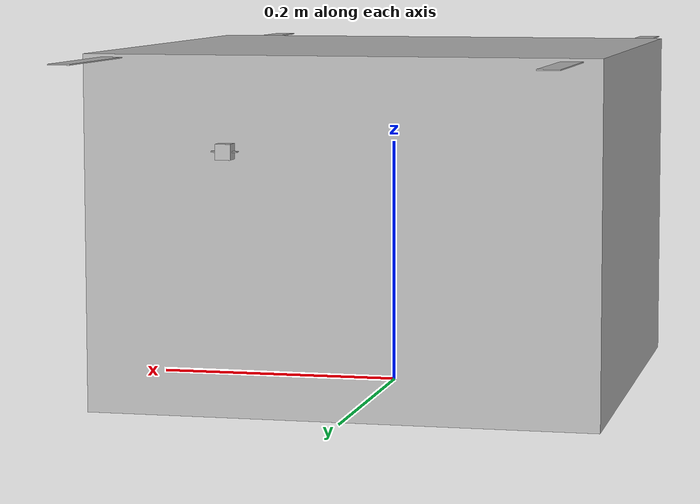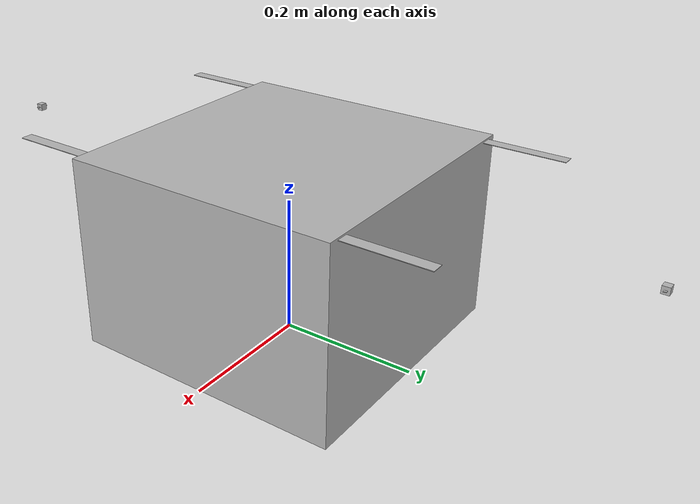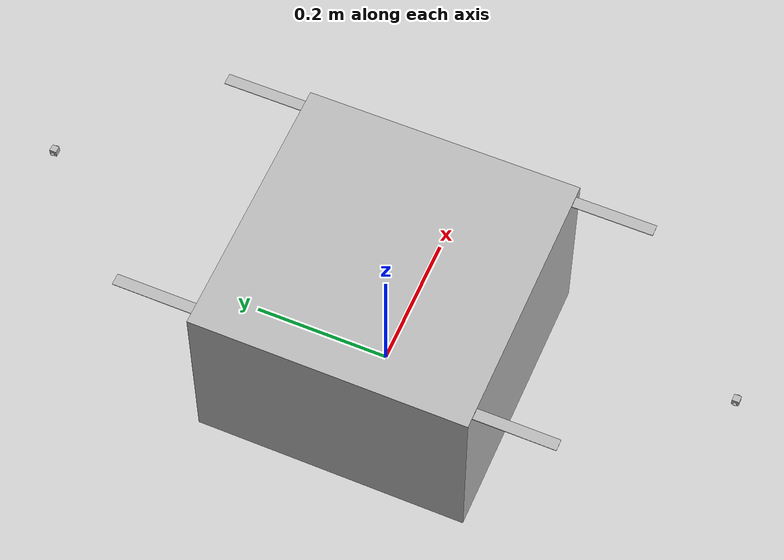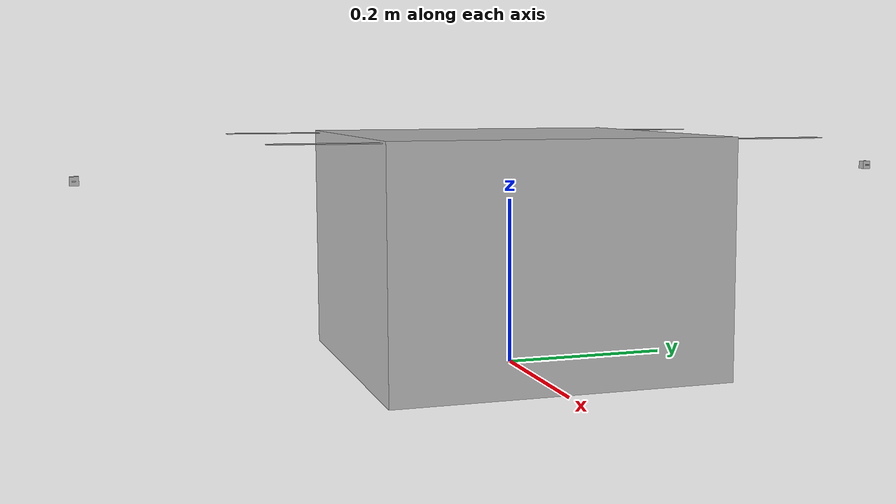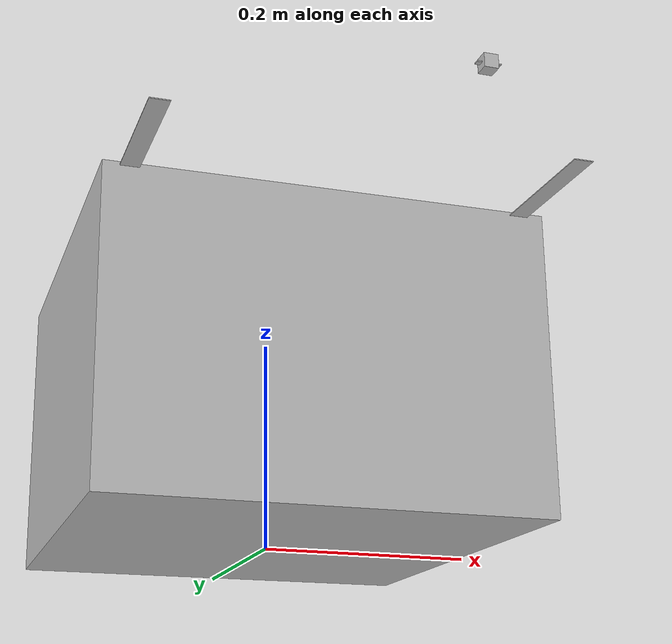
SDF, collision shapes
<?xml version="1.0" encoding="UTF-8"?>
<sdf version='1.9'>
  <model name='x500_dual_500'>
    <pose>0 0 0.217 0 0 1.57</pose>
    <self_collide>false</self_collide>
    <static>false</static>
    <link name="base_link">
    <inertial>
        <pose>0 0 0.015702 0 0 0</pose>
        <mass>2.47</mass>
        <inertia>
          <ixx>0.0133</ixx>
          <ixy>0</ixy>
          <ixz>0</ixz>
          <iyy>0.0133</iyy>
          <iyz>0</iyz>
          <izz>0.0249</izz>
        </inertia>
      </inertial>
      <gravity>true</gravity>
      <velocity_decay/>
      <visual name="base_link_visual">
        <pose>0 0 0 0 0 0</pose>
        <geometry>
          <mesh>
            <scale>1 1 1</scale>
            <uri>model://x500_dual_500/meshes/uav_frame_x500_simple.dae</uri>
          </mesh>
        </geometry>
      </visual>
      <!-- Collision definition -->
      <collision name="base_link_collision_0">
        <pose> 0 0 -0.076276 0 0 0</pose>
        <geometry>
          <box>
            <size>0.40 0.40 0.278 </size>
          </box>
        </geometry>
        <surface>
          <contact>
            <ode>
              <min_depth>0.001</min_depth>
              <max_vel>0</max_vel>
            </ode>
          </contact>
          <friction>
            <ode/>
          </friction>
        </surface>
      </collision>
<!-- Collision definition END-->
<!-- Flight Sensors  -->
      <sensor name="air_pressure_sensor" type="air_pressure">
        <always_on>1</always_on>
        <update_rate>50</update_rate>
        <air_pressure>
          <pressure>
            <noise type="gaussian">
              <mean>0</mean>
              <stddev>0.01</stddev>
            </noise>
          </pressure>
        </air_pressure>
      </sensor>
      <sensor name="imu_sensor" type="imu">
        <always_on>1</always_on>
        <update_rate>250</update_rate>
      </sensor>
    </link>

<!-- Propellers definition -->
    <link name="rotor_0">
        <gravity>true</gravity>
        <self_collide>false</self_collide>
        <velocity_decay/>
        <pose>0.176876 -0.176876 0.06 0 0 0</pose>
        <inertial>
            <pose>0 0 -0.02 0 0 0</pose>
              <mass>0.005</mass>
              <inertia>
                <ixx>9.75e-07</ixx>
                <ixy>0</ixy>
                <ixz>0</ixz>
                <iyy>0.000166704</iyy>
                <iyz>0</iyz>
                <izz>0.000167604</izz>
              </inertia>
        </inertial>
       <visual name="rotor_0_visual">
        <pose>0 0 0 0 0 0</pose>
        <geometry>
          <mesh>
            <scale>1 1 1</scale>
            <uri>model://x500_dual_200/meshes/holybro_propeller_ccw.dae</uri>
          </mesh>
        </geometry>
      </visual>
      <collision name="rotor_0_collision">
        <pose>0 0 0 0 0 0 </pose>
        <geometry>
          <box>
            <size>0.2792307692307692 0.016923076923076923 0.0008461538461538462</size>
          </box>
        </geometry>
        <surface>
          <contact>
            <ode>
              <min_depth>0.001</min_depth>
              <max_vel>0</max_vel>
            </ode>
          </contact>
          <friction>
            <ode/>
          </friction>
        </surface>
      </collision>
    </link>
    <joint name="rotor_0_joint" type="revolute">
      <parent>base_link</parent>
      <child>rotor_0</child>
      <axis>
        <xyz>0 0 1</xyz>
        <limit>
          <lower>-1e+16</lower>
          <upper>1e+16</upper>
        </limit>
        <dynamics>
          <spring_reference>0</spring_reference>
          <spring_stiffness>0</spring_stiffness>
        </dynamics>
      </axis>
    </joint>

    <link name="rotor_1">
        <gravity>true</gravity>
        <self_collide>false</self_collide>
        <velocity_decay/>
        <pose>-0.176876 0.176876 0.06 0 0 0</pose>
        <inertial>
            <pose>0 0 -0.02 0 0 0</pose>
              <mass>0.005</mass>
              <inertia>
                <ixx>9.75e-07</ixx>
                <ixy>0</ixy>
                <ixz>0</ixz>
                <iyy>0.000166704</iyy>
                <iyz>0</iyz>
                <izz>0.000167604</izz>
              </inertia>
        </inertial>
       <visual name="rotor_1_visual">
        <pose>0 0 0 0 0 0</pose>
        <geometry>
          <mesh>
            <scale>1 1 1</scale>
            <uri>model://x500_dual_200/meshes/holybro_propeller_ccw.dae</uri>
          </mesh>
        </geometry>
      </visual>
      <collision name="rotor_1_collision">
        <pose>0 0 0 0 0 0 </pose>
        <geometry>
          <box>
            <size>0.2792307692307692 0.016923076923076923 0.0008461538461538462</size>
          </box>
        </geometry>
        <surface>
          <contact>
            <ode>
              <min_depth>0.001</min_depth>
              <max_vel>0</max_vel>
            </ode>
          </contact>
          <friction>
            <ode/>
          </friction>
        </surface>
      </collision>
    </link>
    <joint name="rotor_1_joint" type="revolute">
      <parent>base_link</parent>
      <child>rotor_1</child>
      <axis>
        <xyz>0 0 1</xyz>
        <limit>
          <lower>-1e+16</lower>
          <upper>1e+16</upper>
        </limit>
        <dynamics>
          <spring_reference>0</spring_reference>
          <spring_stiffness>0</spring_stiffness>
        </dynamics>
      </axis>
    </joint>

    <link name="rotor_2">
        <gravity>true</gravity>
        <self_collide>false</self_collide>
        <velocity_decay/>
        <pose> 0.176876 0.176876 0.06 0 0 0</pose>
        <inertial>
            <pose>0 0 -0.02 0 0 0</pose>
              <mass>0.005</mass>
              <inertia>
                <ixx>9.75e-07</ixx>
                <ixy>0</ixy>
                <ixz>0</ixz>
                <iyy>0.000166704</iyy>
                <iyz>0</iyz>
                <izz>0.000167604</izz>
              </inertia>
        </inertial>
       <visual name="rotor_2_visual">
        <pose>0 0 0 0 0 0</pose>
        <geometry>
          <mesh>
            <scale>1 1 1</scale>
            <uri>model://x500_dual_200/meshes/holybro_propeller_cw.dae</uri>
          </mesh>
        </geometry>
      </visual>
      <collision name="rotor_2_collision">
        <pose>0 0 0 0 0 0 </pose>
        <geometry>
          <box>
            <size>0.2792307692307692 0.016923076923076923 0.0008461538461538462</size>
          </box>
        </geometry>
        <surface>
          <contact>
            <ode>
              <min_depth>0.001</min_depth>
              <max_vel>0</max_vel>
            </ode>
          </contact>
          <friction>
            <ode/>
          </friction>
        </surface>
      </collision>
    </link>
    <joint name="rotor_2_joint" type="revolute">
      <parent>base_link</parent>
      <child>rotor_2</child>
      <axis>
        <xyz>0 0 1</xyz>
        <limit>
          <lower>-1e+16</lower>
          <upper>1e+16</upper>
        </limit>
        <dynamics>
          <spring_reference>0</spring_reference>
          <spring_stiffness>0</spring_stiffness>
        </dynamics>
      </axis>
    </joint>

    <link name="rotor_3">
        <gravity>true</gravity>
        <self_collide>false</self_collide>
        <velocity_decay/>
        <pose> -0.176876 -0.176876 0.06 0 0 0</pose>
        <inertial>
            <pose>0 0 -0.02 0 0 0</pose>
              <mass>0.005</mass>
              <inertia>
                <ixx>9.75e-07</ixx>
                <ixy>0</ixy>
                <ixz>0</ixz>
                <iyy>0.000166704</iyy>
                <iyz>0</iyz>
                <izz>0.000167604</izz>
              </inertia>
        </inertial>
       <visual name="rotor_3_visual">
        <pose>0 0 0 0 0 0</pose>
        <geometry>
          <mesh>
            <scale>1 1 1</scale>
            <uri>model://x500_dual_200/meshes/holybro_propeller_cw.dae</uri>
          </mesh>
        </geometry>
      </visual>
      <collision name="rotor_3_collision">
        <pose>0 0 0 0 0 0 </pose>
        <geometry>
          <box>
            <size>0.2792307692307692 0.016923076923076923 0.0008461538461538462</size>
          </box>
        </geometry>
        <surface>
          <contact>
            <ode>
              <min_depth>0.001</min_depth>
              <max_vel>0</max_vel>
            </ode>
          </contact>
          <friction>
            <ode/>
          </friction>
        </surface>
      </collision>
    </link>
    <joint name="rotor_3_joint" type="revolute">
      <parent>base_link</parent>
      <child>rotor_3</child>
      <axis>
        <xyz>0 0 1</xyz>
        <limit>
          <lower>-1e+16</lower>
          <upper>1e+16</upper>
        </limit>
        <dynamics>
          <spring_reference>0</spring_reference>
          <spring_stiffness>0</spring_stiffness>
        </dynamics>
      </axis>
    </joint>
<!-- Propellers definition END-->
<!-- EDF Frame 500  -->

<!-- Manipulator arm  -->
    <link name="thrusters_frame_top">
        <gravity>true</gravity>
        <self_collide>false</self_collide>
        <velocity_decay/>
        <pose> 0.0 0 0 0 0 0 </pose>
        <inertial>
          <pose> 0 0 0.062 0 0 0</pose>
          <mass>0.105</mass>
            <inertia>
              <ixx>1.7062e-06</ixx>
              <iyy>0.0088</iyy>
              <izz>0.0088</izz>
          </inertia>
        </inertial>
       <visual name="thrusters_frame_top_visual">
        <pose>0 0 0 0 0 0</pose>
        <geometry>
          <mesh>
            <scale>1 1 1</scale>
            <uri>model://x500_dual_500/meshes/thrusters_frame_500_top.dae</uri>
          </mesh>
        </geometry>
      </visual>
      <!-- Correct the collision to be simple box -->
      <collision name="thrusters_frame_top_collision">
        <pose> 0 0 0 0 0 0 </pose>
        <geometry>
          <box>
            <size>0.250 0.009 0.009 </size>
          </box>
        </geometry>
        <surface>
          <contact>
            <ode>
              <min_depth>0.001</min_depth>
              <max_vel>0</max_vel>
            </ode>
          </contact>
          <friction>
            <ode/>
          </friction>
        </surface>
      </collision>
    </link>
    <!-- Correct the collision to be simple box -->
    <joint name="thrusters_frame_top_joint" type="fixed">
      <parent>base_link</parent>
      <child>thrusters_frame_top</child>
    </joint>
<!-- Manipulator arm  -->
    <link name="thrusters_frame_low">
        <gravity>true</gravity>
        <self_collide>false</self_collide>
        <velocity_decay/>
        <pose> 0.0 0 0 0 0 0 </pose>
        <inertial>
          <pose> 0 0 -0.030596 0 0 0</pose>
          <mass>0.133</mass>
            <inertia>
              <ixx>2.1612e-06</ixx>
              <iyy>0.0111</iyy>
              <izz>0.0111</izz>
          </inertia>
        </inertial>
       <visual name="thrusters_frame_low_visual">
        <pose>0 0 0 0 0 0</pose>
        <geometry>
          <mesh>
            <scale>1 1 1</scale>
            <uri>model://x500_dual_500/meshes/thrusters_frame_500_low.dae</uri>
          </mesh>
        </geometry>
      </visual>
      <!-- Correct the collision to be simple box -->
      <collision name="thrusters_frame_low_collision">
        <pose> 0 0 0 0 0 0 </pose>
        <geometry>
          <box>
            <size>0.250 0.009 0.009 </size>
          </box>
        </geometry>
        <surface>
          <contact>
            <ode>
              <min_depth>0.001</min_depth>
              <max_vel>0</max_vel>
            </ode>
          </contact>
          <friction>
            <ode/>
          </friction>
        </surface>
      </collision>
    </link>
    <!-- Correct the collision to be simple box -->
    <joint name="thrusters_frame_low_joint" type="fixed">
      <parent>base_link</parent>
      <child>thrusters_frame_low</child>
    </joint>

<!-- EDF Mass -->
  <link name="edf_1_ball">
        <gravity>true</gravity>
        <self_collide>false</self_collide>
        <velocity_decay/>
        <pose> 0.500 0 0.015702 0 0 0 </pose>
        <inertial>
            <mass>0.175</mass>
            <inertia>
              <ixx>6.3787e-05</ixx>
              <iyy>8.6158e-05</iyy>
              <izz>8.6158e-05</izz>
            </inertia>
        </inertial>
    </link>

    <joint name="edf_1_mass" type="fixed">
      <parent>base_link</parent>
      <child>edf_1_ball</child>
    </joint>

<!-- EDF Mass -->

<!-- EDF Mass -->
  <link name="edf_2_ball">
        <gravity>true</gravity>
        <self_collide>false</self_collide>
        <velocity_decay/>
        <pose> -0.500 0 0.016 0 0 3.14159 </pose>
         <inertial>
            <mass>0.175</mass>
            <inertia>
              <ixx>6.3787e-05</ixx>
              <iyy>8.6158e-05</iyy>
              <izz>8.6158e-05</izz>
            </inertia>
        </inertial>
    </link>

    <joint name="edf_2_mass" type="fixed">
      <parent>base_link</parent>
      <child>edf_2_ball</child>
    </joint>

<!-- EDF Mass -->

<!-- EDF Frame 500 END -->
<link name="edf_1_body">
        <gravity>true</gravity>
        <self_collide>false</self_collide>
        <velocity_decay/>
        <pose> 0.500 0 0.016 0 0 0 </pose>
        <inertial>
        <mass>0.00000001</mass>
          <inertia>
            <ixx>0.000001</ixx>
            <ixy>0.0</ixy>
            <iyy>0.000001</iyy>
            <ixz>0.0</ixz>
            <iyz>0.0</iyz>
            <izz>0.000001</izz>
          </inertia>
        </inertial>
       <visual name="edf_1_visual">
        <pose>0 0 0 0 0 0</pose>
        <geometry>
          <mesh>
            <scale>1 1 1</scale>
            <uri>model://x500_dual_500/meshes/edf_housing.dae</uri>
          </mesh>
        </geometry>
      </visual>
      <collision name="edf_1_collision">
        <pose>0 0 0 0 0 0 </pose>
        <geometry>
          <box>
            <size>0.01 0.01 0.01</size>
          </box>
        </geometry>
        <surface>
          <contact>
            <ode>
              <min_depth>0.001</min_depth>
              <max_vel>0</max_vel>
            </ode>
          </contact>
          <friction>
            <ode/>
          </friction>
        </surface>
      </collision>
    </link>
    <joint name="edf_1_joint" type="revolute">
      <parent>thrusters_frame_low</parent>
      <child>edf_1_body</child>
      <pose> 0 0 0 3.14 0 0 </pose>
      <axis>
        <xyz>0 0 1</xyz>
        <limit>
          <lower>-3.14</lower>
          <upper>3.14</upper>
        </limit>
        <dynamics>
          <damping>1.000</damping>
        </dynamics>
      </axis>
      <physics>
        <ode>
          <implicit_spring_damper>1</implicit_spring_damper>
        </ode>
      </physics>
    </joint>

    <link name="edf_2_body">
        <gravity>true</gravity>
        <self_collide>false</self_collide>
        <velocity_decay/>
        <pose> -0.500 0 0.016 0 0 3.14159 </pose>
        <inertial>
           <mass>0.00000001</mass>
           <inertia>
            <ixx>0.000001</ixx>
            <ixy>0.0</ixy>
            <iyy>0.000001</iyy>
            <ixz>0.0</ixz>
            <iyz>0.0</iyz>
            <izz>0.000001</izz>
          </inertia>
        </inertial>
       <visual name="edf_2_visual">
        <pose>0 0 0 0 0 0</pose>
        <geometry>
          <mesh>
            <scale>1 1 1</scale>
            <uri>model://x500_dual_500/meshes/edf_housing.dae</uri>
          </mesh>
        </geometry>
      </visual>
      <collision name="edf_2_collision">
        <pose>0 0 0 0 0 0 </pose>
        <geometry>
          <box>
            <size>0.01 0.01 0.01</size>
          </box>
        </geometry>
        <surface>
          <contact>
            <ode>
              <min_depth>0.001</min_depth>
              <max_vel>0</max_vel>
            </ode>
          </contact>
          <friction>
            <ode/>
          </friction>
        </surface>
      </collision>
    </link>
    <joint name="edf_2_joint" type="revolute">
      <parent>thrusters_frame_low</parent>
      <child>edf_2_body</child>
      <pose> 0 0 0 3.14 0 0 </pose>
      <axis>
        <xyz>0 0 1</xyz>
        <limit>
          <lower>-3.14</lower>
          <upper>3.14</upper>
        </limit>
        <dynamics>
          <damping>1.000</damping>
        </dynamics>
      </axis>
      <physics>
        <ode>
          <implicit_spring_damper>1</implicit_spring_damper>
        </ode>
      </physics>
    </joint>

<link name="rotor_4">
        <gravity>true</gravity>
        <self_collide>false</self_collide>
        <velocity_decay/>
        <pose> 0.500 0.0  0.016  0.0 1.5708 3.145159</pose>
        <inertial>
          <mass>0.005</mass>
              <inertia>
                <ixx>9.75e-07</ixx>
                <ixy>0</ixy>
                <ixz>0</ixz>
                <iyy>0.000166704</iyy>
                <iyz>0</iyz>
                <izz>0.000167604</izz>
              </inertia>
        </inertial>
       <visual name="rotor_4_visual">
        <pose>0 0 0 0 0 0</pose>
        <geometry>
          <mesh>
            <scale>1 1 1</scale>
            <uri>model://x500_dual_500/meshes/edf_impeler.dae</uri>
          </mesh>
        </geometry>
      </visual>
      <collision name="rotor_4_collision">
        <pose>0 0 0 0 0 0 </pose>
        <geometry>
          <box>
            <size>0.0008461538461538462 0.016923076923076923 0.004</size>
          </box>
        </geometry>
        <surface>
          <contact>
            <ode>
              <min_depth>0.001</min_depth>
              <max_vel>0</max_vel>
            </ode>
          </contact>
          <friction>
            <ode/>
          </friction>
        </surface>
      </collision>
    </link>
    <joint name="rotor_4_joint" type="revolute">
      <parent>edf_1_body</parent>
      <child>rotor_4</child>
      <axis>
        <xyz>0 0 1</xyz>
        <limit>
          <lower>-1e+16</lower>
          <upper>1e+16</upper>
        </limit>
        <dynamics>
          <spring_reference>0</spring_reference>
          <spring_stiffness>0</spring_stiffness>
        </dynamics>
      </axis>
    </joint>

<link name="rotor_5">
        <gravity>true</gravity>
        <self_collide>false</self_collide>
        <velocity_decay/>
        <pose> -0.500 0.0  0.016  0.0 1.5708 0.0</pose>
        <inertial>
            <pose>0 0 -0.02 0 0 0</pose>
              <mass>0.005</mass>
              <inertia>
                <ixx>9.75e-07</ixx>
                <ixy>0</ixy>
                <ixz>0</ixz>
                <iyy>0.000166704</iyy>
                <iyz>0</iyz>
                <izz>0.000167604</izz>
              </inertia>
        </inertial>
       <visual name="rotor_5_visual">
        <pose>0 0 0 0 0 0</pose>
        <geometry>
          <mesh>
            <scale>1 1 1</scale>
            <uri>model://x500_dual_500/meshes/edf_impeler.dae</uri>
          </mesh>
        </geometry>
      </visual>
      <collision name="rotor_5_collision">
        <pose>0 0 0 0 0 0 </pose>
        <geometry>
          <box>
            <size>0.0008461538461538462 0.016923076923076923 0.004</size>
          </box>
        </geometry>
        <surface>
          <contact>
            <ode>
              <min_depth>0.001</min_depth>
              <max_vel>0</max_vel>
            </ode>
          </contact>
          <friction>
            <ode/>
          </friction>
        </surface>
      </collision>
    </link>
    <joint name="rotor_5_joint" type="revolute">
      <parent>edf_2_body</parent>
      <child>rotor_5</child>
      <axis>
        <xyz>0 0 1</xyz>
        <limit>
          <lower>-1e+16</lower>
          <upper>1e+16</upper>
        </limit>
        <dynamics>
          <spring_reference>0</spring_reference>
          <spring_stiffness>0</spring_stiffness>
        </dynamics>
      </axis>
    </joint>
<!-- Horizontal thrusters -->

<!-- Manipulator arm  -->

<!-- Manipulator arm  END -->
<!-- Additional Rotors 4,5END -->

   <plugin filename="gz-sim-multicopter-motor-model-system" name="gz::sim::systems::MulticopterMotorModel">
      <jointName>rotor_0_joint</jointName>
      <linkName>rotor_0</linkName>
      <turningDirection>ccw</turningDirection>
      <timeConstantUp>0.0125</timeConstantUp>
      <timeConstantDown>0.025</timeConstantDown>
      <maxRotVelocity>1000</maxRotVelocity>
      <motorConstant>11.1913e-06</motorConstant>
      <momentConstant>0.016</momentConstant>
      <commandSubTopic>command/motor_speed</commandSubTopic>
      <motorNumber>0</motorNumber>
      <rotorDragCoefficient>8.06428e-05</rotorDragCoefficient>
      <rollingMomentCoefficient>1e-06</rollingMomentCoefficient>
      <rotorVelocitySlowdownSim>10</rotorVelocitySlowdownSim>
      <motorType>velocity</motorType>
    </plugin>
    <plugin filename="gz-sim-multicopter-motor-model-system" name="gz::sim::systems::MulticopterMotorModel">
      <jointName>rotor_1_joint</jointName>
      <linkName>rotor_1</linkName>
      <turningDirection>ccw</turningDirection>
      <timeConstantUp>0.0125</timeConstantUp>
      <timeConstantDown>0.025</timeConstantDown>
      <maxRotVelocity>1000</maxRotVelocity>
      <motorConstant>11.1913e-06</motorConstant>
      <momentConstant>0.016</momentConstant>
      <commandSubTopic>command/motor_speed</commandSubTopic>
      <motorNumber>1</motorNumber>
      <rotorDragCoefficient>8.06428e-05</rotorDragCoefficient>
      <rollingMomentCoefficient>1e-06</rollingMomentCoefficient>
      <rotorVelocitySlowdownSim>10</rotorVelocitySlowdownSim>
      <motorType>velocity</motorType>
    </plugin>
    <plugin filename="gz-sim-multicopter-motor-model-system" name="gz::sim::systems::MulticopterMotorModel">
      <jointName>rotor_2_joint</jointName>
      <linkName>rotor_2</linkName>
      <turningDirection>cw</turningDirection>
      <timeConstantUp>0.0125</timeConstantUp>
      <timeConstantDown>0.025</timeConstantDown>
      <maxRotVelocity>1000</maxRotVelocity>
      <motorConstant>11.1913e-06</motorConstant>
      <momentConstant>0.016</momentConstant>
      <commandSubTopic>command/motor_speed</commandSubTopic>
      <motorNumber>2</motorNumber>
      <rotorDragCoefficient>8.06428e-05</rotorDragCoefficient>
      <rollingMomentCoefficient>1e-06</rollingMomentCoefficient>
      <rotorVelocitySlowdownSim>10</rotorVelocitySlowdownSim>
      <motorType>velocity</motorType>
    </plugin>
    <plugin filename="gz-sim-multicopter-motor-model-system" name="gz::sim::systems::MulticopterMotorModel">
      <jointName>rotor_3_joint</jointName>
      <linkName>rotor_3</linkName>
      <turningDirection>cw</turningDirection>
      <timeConstantUp>0.0125</timeConstantUp>
      <timeConstantDown>0.025</timeConstantDown>
      <maxRotVelocity>1000</maxRotVelocity>
      <motorConstant>11.1913e-06</motorConstant>
      <momentConstant>0.016</momentConstant>
      <commandSubTopic>command/motor_speed</commandSubTopic>
      <motorNumber>3</motorNumber>
      <rotorDragCoefficient>8.06428e-05</rotorDragCoefficient>
      <rollingMomentCoefficient>1e-06</rollingMomentCoefficient>
      <rotorVelocitySlowdownSim>10</rotorVelocitySlowdownSim>
      <motorType>velocity</motorType>
    </plugin>

    <!-- Horizontal thrusters -->
    <plugin filename="gz-sim-multicopter-motor-model-system" name="gz::sim::systems::MulticopterMotorModel">
      <jointName>rotor_4_joint</jointName>
      <linkName>rotor_4</linkName>
      <turningDirection>ccw</turningDirection>
      <timeConstantUp>0.0125</timeConstantUp>
      <timeConstantDown>0.025</timeConstantDown>
      <maxRotVelocity>1000</maxRotVelocity>
      <motorConstant>8.54858e-06</motorConstant>
      <momentConstant>0.016</momentConstant>
      <commandSubTopic>command/motor_speed</commandSubTopic>
      <motorNumber>4</motorNumber>
      <rotorDragCoefficient>8.06428e-05</rotorDragCoefficient>
      <rollingMomentCoefficient>1e-06</rollingMomentCoefficient>
      <rotorVelocitySlowdownSim>10</rotorVelocitySlowdownSim>
      <motorType>velocity</motorType>
    </plugin>

    <plugin filename="gz-sim-multicopter-motor-model-system" name="gz::sim::systems::MulticopterMotorModel">
      <jointName>rotor_5_joint</jointName>
      <linkName>rotor_5</linkName>
      <turningDirection>ccw</turningDirection>
      <timeConstantUp>0.0125</timeConstantUp>
      <timeConstantDown>0.025</timeConstantDown>
      <maxRotVelocity>1000</maxRotVelocity>
      <motorConstant>8.54858e-06</motorConstant>
      <momentConstant>0.016</momentConstant>
      <commandSubTopic>command/motor_speed</commandSubTopic>
      <motorNumber>5</motorNumber>
      <rotorDragCoefficient>8.06428e-05</rotorDragCoefficient>
      <rollingMomentCoefficient>1e-06</rollingMomentCoefficient>
      <rotorVelocitySlowdownSim>10</rotorVelocitySlowdownSim>
      <motorType>velocity</motorType>
    </plugin>
<!-- Horizontal thrusters END-->
    <plugin
      filename="gz-sim-joint-position-controller-system" name="gz::sim::systems::JointPositionController">
      <joint_name>edf_1_joint</joint_name>
      <sub_topic>servo_0</sub_topic>
      <p_gain>10</p_gain>
    </plugin>

    <plugin
      filename="gz-sim-joint-position-controller-system" name="gz::sim::systems::JointPositionController">
      <joint_name>edf_2_joint</joint_name>
      <sub_topic>servo_1</sub_topic>
      <p_gain>10.0</p_gain>  <!-- Higher value for faster response -->
    </plugin>

  </model>
</sdf>
